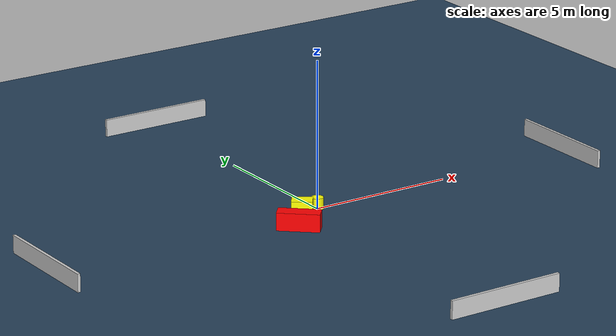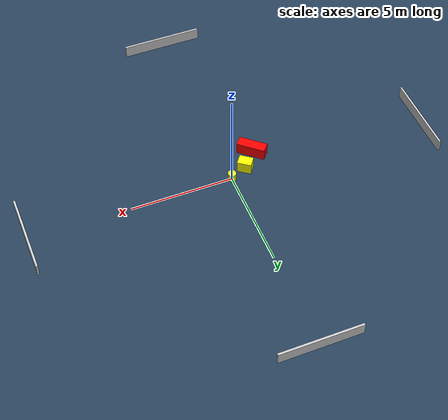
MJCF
<?xml version="1.0" ?>
<mujoco model="generated_environment">
  <option timestep="0.01" integrator="RK4" cone="elliptic"/>
  <default>
    <geom density="1"/>
  </default>
  <asset>
    <texture builtin="gradient" height="3072" name="skybox" rgb1="0.3 0.5 0.7" rgb2="0 0 0" type="skybox" width="512"/>
    <texture builtin="checker" height="300" name="groundplane" rgb1="0.2 0.3 0.4" rgb2="0.1 0.2 0.3" type="2d" width="300"/>
    <material name="groundplane" reflectance="0.2" texrepeat="5 5" texture="groundplane"/>
  </asset>
  <worldbody>
    <light dir="0 0 -1" directional="true" pos="0 0 1.5"/>
    <geom condim="3" friction="0.5 0.005 0.001" material="groundplane" name="floor" pos="0 0 0" size="0 0 0.05" type="plane"/>
    <body name="walls">
      <geom name="wall_1" condim="4" pos="-10.0 0.0 0.3" rgba="0.800000011920929 0.800000011920929 0.800000011920929 1.0" size="0.05 2.0 0.3" type="box"/>
      <geom name="wall_2" condim="4" pos="10.0 0.0 0.3" rgba="0.800000011920929 0.800000011920929 0.800000011920929 1.0" size="0.05 2.0 0.3" type="box"/>
      <geom name="wall_3" condim="4" pos="0.0 -10.0 0.3" rgba="0.800000011920929 0.800000011920929 0.800000011920929 1.0" size="2.0 0.05 0.3" type="box"/>
      <geom name="wall_4" condim="4" pos="0.0 10.0 0.3" rgba="0.800000011920929 0.800000011920929 0.800000011920929 1.0" size="2.0 0.05 0.3" type="box"/>
    </body>
    <body name="robot">
      <joint name="joint_x" type="slide" pos="0 0 0" axis="1 0 0"/>
      <joint name="joint_y" type="slide" pos="0 0 0" axis="0 1 0"/>
      <geom name="robot" type="cylinder" pos="0.0 0.0 0.2" size="0.2 0.2 0.0" mass="5.0" friction="1.0 0.005 0.0001" condim="4" rgba="1.0 1.0 0.0 1.0"/>
    </body>
    <body name="obstacle_1_movable">
      <geom name="obstacle_1_movable" condim="4" pos="-0.8266475632961594 -0.3562829623788929 0.3" euler="0 0 143.34208663673633" friction="0.0 0.005 0.001" rgba="1.0 1.0 0.0 1.0" size="0.34139613398732765 0.25836907849282664 0.3" type="box" mass="0.1"/>
      <joint type="free"/>
    </body>
    <body name="obstacle_2_static">
      <geom name="obstacle_2_static" condim="4" pos="-1.5180523697332478 -1.2141491718684516 0.3" euler="0 0 48.55201581221151" friction="0.0 0.005 0.001" rgba="1.0 0.0 0.0 1.0" size="0.253016681544321 0.7032647455386378 0.3" type="box"/>
    </body>
  </worldbody>
  <actuator>
    <motor name="actuator_x" joint="joint_x" gear="1" ctrlrange="-1 1"/>
    <motor name="actuator_y" joint="joint_y" gear="1" ctrlrange="-1 1"/>
  </actuator>
</mujoco>
